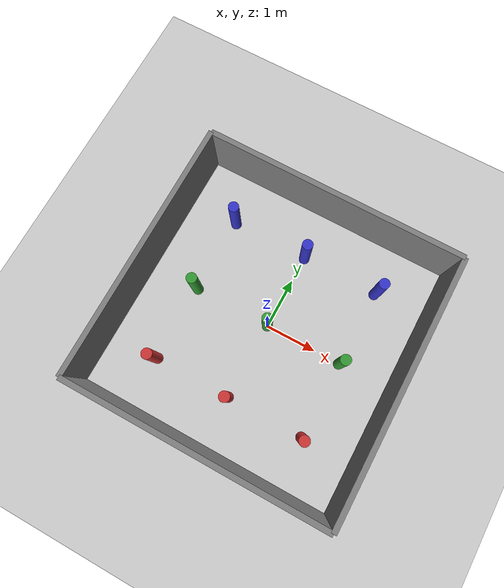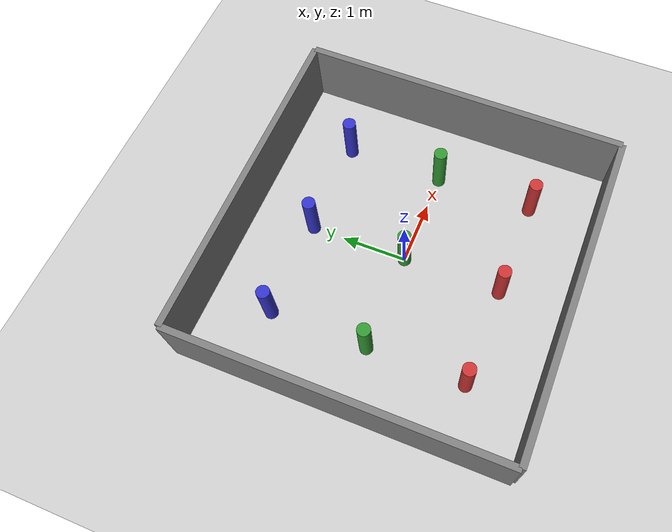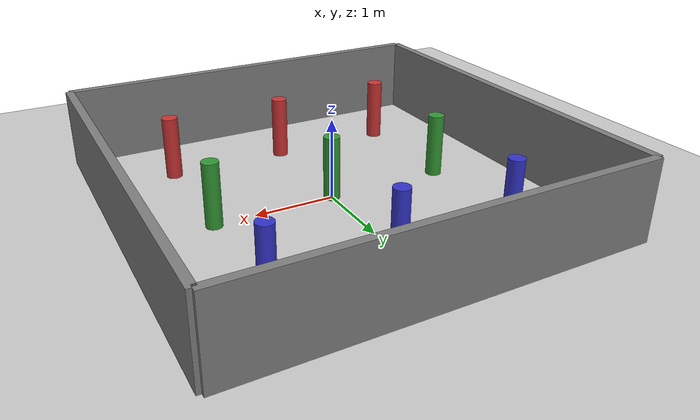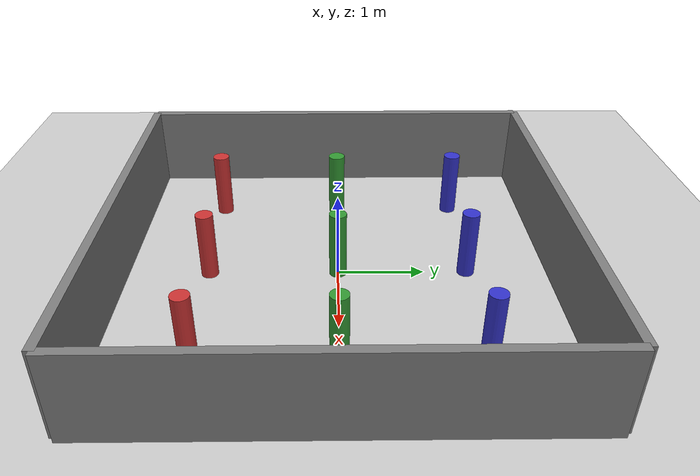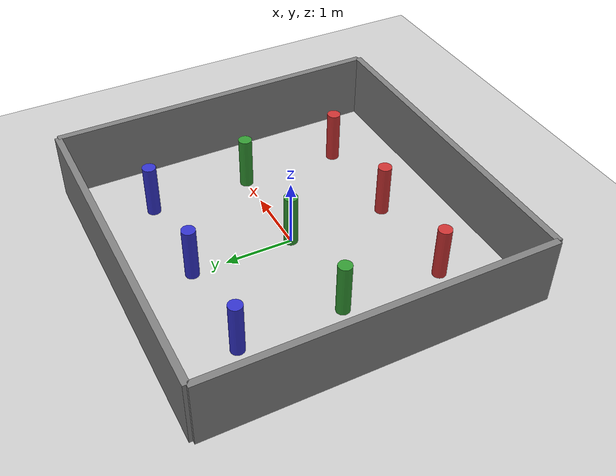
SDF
<?xml version="1.0" ?>
<sdf version="1.6">
  <world name="columns_world">

    <!-- ── Ground plane ── -->
    <include>
      <uri>model://ground_plane</uri>
    </include>

    <!-- ══════════════════════════════════════════════
         Enclosing walls  (5 m × 5 m arena)
         ══════════════════════════════════════════════ -->

    <!-- North wall -->
    <model name="wall_north">
      <static>true</static>
      <pose>0 2.5 0.5 0 0 0</pose>
      <link name="link">
        <collision name="col"><geometry><box><size>5.0 0.1 1.0</size></box></geometry></collision>
        <visual name="vis"><geometry><box><size>5.0 0.1 1.0</size></box></geometry>
          <material><ambient>0.5 0.5 0.5 1</ambient></material></visual>
      </link>
    </model>

    <!-- South wall -->
    <model name="wall_south">
      <static>true</static>
      <pose>0 -2.5 0.5 0 0 0</pose>
      <link name="link">
        <collision name="col"><geometry><box><size>5.0 0.1 1.0</size></box></geometry></collision>
        <visual name="vis"><geometry><box><size>5.0 0.1 1.0</size></box></geometry>
          <material><ambient>0.5 0.5 0.5 1</ambient></material></visual>
      </link>
    </model>

    <!-- East wall -->
    <model name="wall_east">
      <static>true</static>
      <pose>2.5 0 0.5 0 0 0</pose>
      <link name="link">
        <collision name="col"><geometry><box><size>0.1 5.0 1.0</size></box></geometry></collision>
        <visual name="vis"><geometry><box><size>0.1 5.0 1.0</size></box></geometry>
          <material><ambient>0.5 0.5 0.5 1</ambient></material></visual>
      </link>
    </model>

    <!-- West wall -->
    <model name="wall_west">
      <static>true</static>
      <pose>-2.5 0 0.5 0 0 0</pose>
      <link name="link">
        <collision name="col"><geometry><box><size>0.1 5.0 1.0</size></box></geometry></collision>
        <visual name="vis"><geometry><box><size>0.1 5.0 1.0</size></box></geometry>
          <material><ambient>0.5 0.5 0.5 1</ambient></material></visual>
      </link>
    </model>

    <!-- Row 1 (y = -1.5) -->
    <model name="col_1_1">
      <static>true</static><pose>-1.5 -1.5 0.4 0 0 0</pose>
      <link name="link">
        <collision name="col"><geometry><cylinder><radius>0.10</radius><length>0.80</length></cylinder></geometry></collision>
        <visual name="vis"><geometry><cylinder><radius>0.10</radius><length>0.80</length></cylinder></geometry>
          <material><ambient>0.8 0.2 0.2 1</ambient></material></visual>
      </link>
    </model>
    <model name="col_1_2">
      <static>true</static><pose>0.0 -1.5 0.4 0 0 0</pose>
      <link name="link">
        <collision name="col"><geometry><cylinder><radius>0.10</radius><length>0.80</length></cylinder></geometry></collision>
        <visual name="vis"><geometry><cylinder><radius>0.10</radius><length>0.80</length></cylinder></geometry>
          <material><ambient>0.8 0.2 0.2 1</ambient></material></visual>
      </link>
    </model>
    <model name="col_1_3">
      <static>true</static><pose>1.5 -1.5 0.4 0 0 0</pose>
      <link name="link">
        <collision name="col"><geometry><cylinder><radius>0.10</radius><length>0.80</length></cylinder></geometry></collision>
        <visual name="vis"><geometry><cylinder><radius>0.10</radius><length>0.80</length></cylinder></geometry>
          <material><ambient>0.8 0.2 0.2 1</ambient></material></visual>
      </link>
    </model>

    <!-- Row 2 (y = 0.0) -->
    <model name="col_2_1">
      <static>true</static><pose>-1.5 0.0 0.4 0 0 0</pose>
      <link name="link">
        <collision name="col"><geometry><cylinder><radius>0.10</radius><length>0.80</length></cylinder></geometry></collision>
        <visual name="vis"><geometry><cylinder><radius>0.10</radius><length>0.80</length></cylinder></geometry>
          <material><ambient>0.2 0.6 0.2 1</ambient></material></visual>
      </link>
    </model>
    <model name="col_2_2">
      <static>true</static><pose>0.0 0.0 0.4 0 0 0</pose>
      <link name="link">
        <collision name="col"><geometry><cylinder><radius>0.10</radius><length>0.80</length></cylinder></geometry></collision>
        <visual name="vis"><geometry><cylinder><radius>0.10</radius><length>0.80</length></cylinder></geometry>
          <material><ambient>0.2 0.6 0.2 1</ambient></material></visual>
      </link>
    </model>
    <model name="col_2_3">
      <static>true</static><pose>1.5 0.0 0.4 0 0 0</pose>
      <link name="link">
        <collision name="col"><geometry><cylinder><radius>0.10</radius><length>0.80</length></cylinder></geometry></collision>
        <visual name="vis"><geometry><cylinder><radius>0.10</radius><length>0.80</length></cylinder></geometry>
          <material><ambient>0.2 0.6 0.2 1</ambient></material></visual>
      </link>
    </model>

    <!-- Row 3 (y = 1.5) -->
    <model name="col_3_1">
      <static>true</static><pose>-1.5 1.5 0.4 0 0 0</pose>
      <link name="link">
        <collision name="col"><geometry><cylinder><radius>0.10</radius><length>0.80</length></cylinder></geometry></collision>
        <visual name="vis"><geometry><cylinder><radius>0.10</radius><length>0.80</length></cylinder></geometry>
          <material><ambient>0.2 0.2 0.8 1</ambient></material></visual>
      </link>
    </model>
    <model name="col_3_2">
      <static>true</static><pose>0.0 1.5 0.4 0 0 0</pose>
      <link name="link">
        <collision name="col"><geometry><cylinder><radius>0.10</radius><length>0.80</length></cylinder></geometry></collision>
        <visual name="vis"><geometry><cylinder><radius>0.10</radius><length>0.80</length></cylinder></geometry>
          <material><ambient>0.2 0.2 0.8 1</ambient></material></visual>
      </link>
    </model>
    <model name="col_3_3">
      <static>true</static><pose>1.5 1.5 0.4 0 0 0</pose>
      <link name="link">
        <collision name="col"><geometry><cylinder><radius>0.10</radius><length>0.80</length></cylinder></geometry></collision>
        <visual name="vis"><geometry><cylinder><radius>0.10</radius><length>0.80</length></cylinder></geometry>
          <material><ambient>0.2 0.2 0.8 1</ambient></material></visual>
      </link>
    </model>

  </world>
</sdf>
